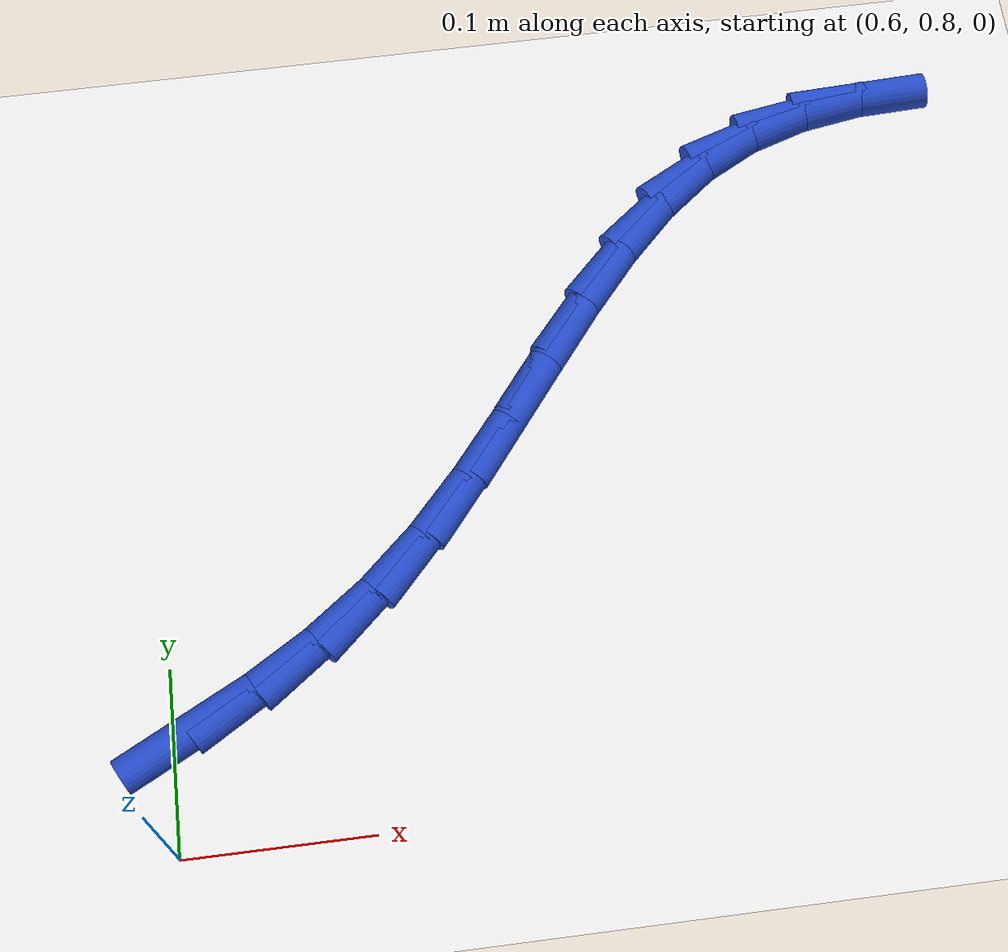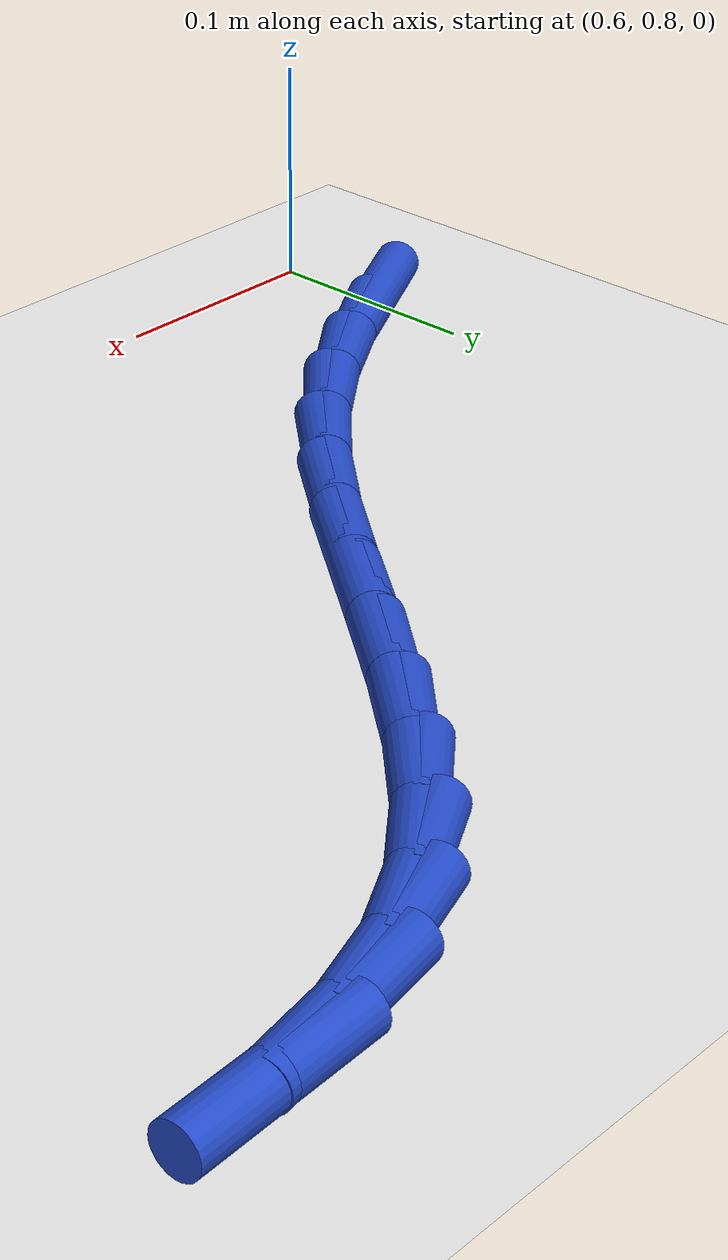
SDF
<sdf version="1.6">
 <world name="default">
  <model name="ground_plane">
   <static>1</static>
   <link name="link">
    <collision name="collision">
     <geometry><plane><normal>0 0 1</normal><size>100 100</size></plane></geometry>
     <surface><friction><ode><mu>100</mu><mu2>50</mu2></ode></friction></surface>
    </collision>
    <visual name="visual">
     <cast_shadows>0</cast_shadows>
     <geometry><plane><normal>0 0 1</normal><size>100 100</size></plane></geometry>
     <material>
      <script><uri>file://media/materials/scripts/gazebo.material</uri><name>Gazebo/WhiteGlow</name></script>
     </material>
    </visual>
   </link>
  </model>
  <model name="line">
   <link name="link_29">
    <pose>0.6091424224912391 0.8617444925858635 0.01 0 1.57 0.48178208080744667</pose>
    <collision name="collision">
     <geometry><cylinder><radius>0.01</radius><length>0.08</length></cylinder></geometry>
    </collision>
    <visual name="visual">
     <material>
      <script><name>Gazebo/Blue</name><uri>file://media/materials/scripts/gazebo.material</uri></script>
     </material>
     <geometry><cylinder><radius>0.01</radius><length>0.08</length></cylinder></geometry>
    </visual>
   </link>
   <link name="link_30">
    <pose>0.6443682384384273 0.8801632981246731 0.01 0 1.57 0.5547627631440099</pose>
    <collision name="collision">
     <geometry><cylinder><radius>0.01</radius><length>0.08</length></cylinder></geometry>
    </collision>
    <visual name="visual">
     <material>
      <script><name>Gazebo/Blue</name><uri>file://media/materials/scripts/gazebo.material</uri></script>
     </material>
     <geometry><cylinder><radius>0.01</radius><length>0.08</length></cylinder></geometry>
    </visual>
   </link>
   <link name="link_31">
    <pose>0.6780735553748 0.9010497257033518 0.01 0 1.57 0.6443933276693075</pose>
    <collision name="collision">
     <geometry><cylinder><radius>0.01</radius><length>0.08</length></cylinder></geometry>
    </collision>
    <visual name="visual">
     <material>
      <script><name>Gazebo/Blue</name><uri>file://media/materials/scripts/gazebo.material</uri></script>
     </material>
     <geometry><cylinder><radius>0.01</radius><length>0.08</length></cylinder></geometry>
    </visual>
   </link>
   <link name="link_32">
    <pose>0.7098806948040239 0.9249494520574737 0.01 0 1.57 0.7476386784819729</pose>
    <collision name="collision">
     <geometry><cylinder><radius>0.01</radius><length>0.08</length></cylinder></geometry>
    </collision>
    <visual name="visual">
     <material>
      <script><name>Gazebo/Blue</name><uri>file://media/materials/scripts/gazebo.material</uri></script>
     </material>
     <geometry><cylinder><radius>0.01</radius><length>0.08</length></cylinder></geometry>
    </visual>
   </link>
   <link name="link_33">
    <pose>0.7394402083044123 0.9523568995657904 0.01 0 1.57 0.8371657122297678</pose>
    <collision name="collision">
     <geometry><cylinder><radius>0.01</radius><length>0.08</length></cylinder></geometry>
    </collision>
    <visual name="visual">
     <material>
      <script><name>Gazebo/Blue</name><uri>file://media/materials/scripts/gazebo.material</uri></script>
     </material>
     <geometry><cylinder><radius>0.01</radius><length>0.08</length></cylinder></geometry>
    </visual>
   </link>
   <link name="link_34">
    <pose>0.7669156300990237 0.9828351223465338 0.01 0 1.57 0.8930124837304063</pose>
    <collision name="collision">
     <geometry><cylinder><radius>0.01</radius><length>0.08</length></cylinder></geometry>
    </collision>
    <visual name="visual">
     <material>
      <script><name>Gazebo/Blue</name><uri>file://media/materials/scripts/gazebo.material</uri></script>
     </material>
     <geometry><cylinder><radius>0.01</radius><length>0.08</length></cylinder></geometry>
    </visual>
   </link>
   <link name="link_35">
    <pose>0.792917537380301 1.0151355259426207 0.01 0 1.57 0.9172627812410121</pose>
    <collision name="collision">
     <geometry><cylinder><radius>0.01</radius><length>0.08</length></cylinder></geometry>
    </collision>
    <visual name="visual">
     <material>
      <script><name>Gazebo/Blue</name><uri>file://media/materials/scripts/gazebo.material</uri></script>
     </material>
     <geometry><cylinder><radius>0.01</radius><length>0.08</length></cylinder></geometry>
    </visual>
   </link>
   <link name="link_36">
    <pose>0.8180714711706399 1.0479823476556671 0.01 0 1.57 0.9106997690434878</pose>
    <collision name="collision">
     <geometry><cylinder><radius>0.01</radius><length>0.08</length></cylinder></geometry>
    </collision>
    <visual name="visual">
     <material>
      <script><name>Gazebo/Blue</name><uri>file://media/materials/scripts/gazebo.material</uri></script>
     </material>
     <geometry><cylinder><radius>0.01</radius><length>0.08</length></cylinder></geometry>
    </visual>
   </link>
   <link name="link_37">
    <pose>0.8430029724924359 1.0800998247872886 0.01 0 1.57 0.8713539276780353</pose>
    <collision name="collision">
     <geometry><cylinder><radius>0.01</radius><length>0.08</length></cylinder></geometry>
    </collision>
    <visual name="visual">
     <material>
      <script><name>Gazebo/Blue</name><uri>file://media/materials/scripts/gazebo.material</uri></script>
     </material>
     <geometry><cylinder><radius>0.01</radius><length>0.08</length></cylinder></geometry>
    </visual>
   </link>
   <link name="link_38">
    <pose>0.8683375823680858 1.1102121946391024 0.01 0 1.57 0.7942003148657556</pose>
    <collision name="collision">
     <geometry><cylinder><radius>0.01</radius><length>0.08</length></cylinder></geometry>
    </collision>
    <visual name="visual">
     <material>
      <script><name>Gazebo/Blue</name><uri>file://media/materials/scripts/gazebo.material</uri></script>
     </material>
     <geometry><cylinder><radius>0.01</radius><length>0.08</length></cylinder></geometry>
    </visual>
   </link>
   <link name="link_39">
    <pose>0.8947008418199855 1.137043694512725 0.01 0 1.57 0.671706464112291</pose>
    <collision name="collision">
     <geometry><cylinder><radius>0.01</radius><length>0.08</length></cylinder></geometry>
    </collision>
    <visual name="visual">
     <material>
      <script><name>Gazebo/Blue</name><uri>file://media/materials/scripts/gazebo.material</uri></script>
     </material>
     <geometry><cylinder><radius>0.01</radius><length>0.08</length></cylinder></geometry>
    </visual>
   </link>
   <link name="link_40">
    <pose>0.9227182918705309 1.1593185617097717 0.01 0 1.57 0.5002158634046626</pose>
    <collision name="collision">
     <geometry><cylinder><radius>0.01</radius><length>0.08</length></cylinder></geometry>
    </collision>
    <visual name="visual">
     <material>
      <script><name>Gazebo/Blue</name><uri>file://media/materials/scripts/gazebo.material</uri></script>
     </material>
     <geometry><cylinder><radius>0.01</radius><length>0.08</length></cylinder></geometry>
    </visual>
   </link>
   <link name="link_41">
    <pose>0.9529761883646068 1.1758570077992336 0.01 0 1.57 0.31948546696179964</pose>
    <collision name="collision">
     <geometry><cylinder><radius>0.01</radius><length>0.08</length></cylinder></geometry>
    </collision>
    <visual name="visual">
     <material>
      <script><name>Gazebo/Blue</name><uri>file://media/materials/scripts/gazebo.material</uri></script>
     </material>
     <geometry><cylinder><radius>0.01</radius><length>0.08</length></cylinder></geometry>
    </visual>
   </link>
   <link name="link_42">
    <pose>0.9855839165107408 1.1866442463395734 0.01 0 1.57 0.16529931959805302</pose>
    <collision name="collision">
     <geometry><cylinder><radius>0.01</radius><length>0.08</length></cylinder></geometry>
    </collision>
    <visual name="visual">
     <material>
      <script><name>Gazebo/Blue</name><uri>file://media/materials/scripts/gazebo.material</uri></script>
     </material>
     <geometry><cylinder><radius>0.01</radius><length>0.08</length></cylinder></geometry>
    </visual>
   </link>
   <link name="link_43">
    <pose>1.020333341317882 1.192441197414258 0.01 0 1.57 0.04309647954061544</pose>
    <collision name="collision">
     <geometry><cylinder><radius>0.01</radius><length>0.08</length></cylinder></geometry>
    </collision>
    <visual name="visual">
     <material>
      <script><name>Gazebo/Blue</name><uri>file://media/materials/scripts/gazebo.material</uri></script>
     </material>
     <geometry><cylinder><radius>0.01</radius><length>0.08</length></cylinder></geometry>
    </visual>
   </link>
  </model>
 </world>
</sdf>
